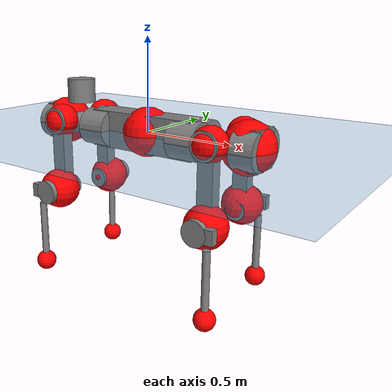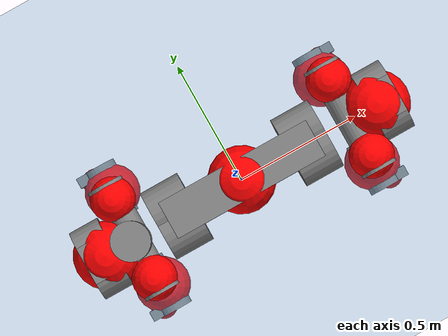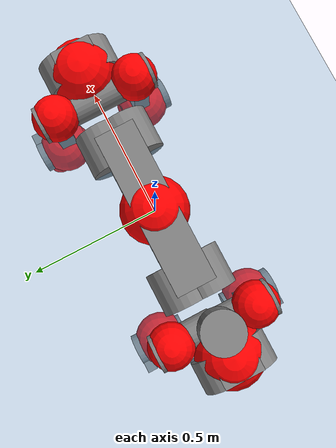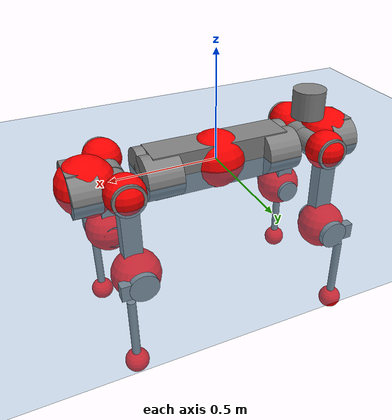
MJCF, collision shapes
<mujoco model="anymal_c">
  <compiler angle="radian" assetdir="assets" balanceinertia="true" inertiafromgeom="false"/>

  <option timestep="0.005" density="1.2" viscosity="2e-05"/>

  <size nkey="1"/>

  <visual>
    <quality shadowsize="8192"/>
    <map shadowclip="0.5"/>
  </visual>

  <default>
    <default class="/">
      <material specular="0" shininess="0.25"/>
      <geom contype="0" conaffinity="0" group="1" solref="-1000 -80"/>
      <site size="0.01 0.005 0.005" group="5"/>
      <general forcelimited="true" forcerange="-80 80" biastype="affine" gainprm="80" biasprm="0 -80 -2"/>
      <default class="anymal_c">
        <joint armature="0.01" damping="0.01" frictionloss="0.1"/>
        <default class="visual">
          <geom type="mesh" group="2"/>
          <default class="visual_zflip"/>
        </default>
        <default class="collision">
          <geom type="cylinder" group="3"/>
          <default class="foot">
            <geom size="0.03 0 0" type="sphere" condim="6" priority="1" friction="0.8 0.02 0.01" solimp="0.015 1 0.03"/>
          </default>
        </default>
      </default>
      <default class="reward_collision_sphere">
        <geom group="5" rgba="1 0 0 1"/>
      </default>
    </default>
  </default>

  <asset>
    <texture type="skybox" colorspace="auto" name="//unnamed_texture_0" builtin="gradient" rgb1="0.95 0.95 0.95" rgb2="0.95 0.95 0.95" width="100" height="600"/>
    <texture type="2d" colorspace="auto" name="texplane" builtin="checker" rgb1="0.345 0.575 0.748" rgb2="0.345 0.575 0.748" markrgb="1 1 1" width="512" height="512"/>
    <texture type="2d" colorspace="linear" name="base" file="base.png"/>
    <texture type="2d" colorspace="linear" name="top_shell" file="top_shell.png"/>
    <texture type="2d" colorspace="linear" name="bottom_shell" file="bottom_shell.png"/>
    <texture type="2d" colorspace="linear" name="remote" file="remote.png"/>
    <texture type="2d" colorspace="linear" name="hatch" file="hatch.png"/>
    <texture type="2d" colorspace="linear" name="handle" file="handle.png"/>
    <texture type="2d" colorspace="linear" name="face" file="face.png"/>
    <texture type="2d" colorspace="linear" name="battery" file="battery.png"/>
    <texture type="2d" colorspace="linear" name="lidar_cage" file="lidar_cage.png"/>
    <texture type="2d" colorspace="linear" name="depth_camera" file="depth_camera.png"/>
    <texture type="2d" colorspace="linear" name="wide_angle_camera" file="wide_angle_camera.png"/>
    <texture type="2d" colorspace="linear" name="lidar" file="lidar.png"/>
    <texture type="2d" colorspace="linear" name="drive" file="drive.png"/>
    <texture type="2d" colorspace="linear" name="hip_l" file="hip_l.png"/>
    <texture type="2d" colorspace="linear" name="shank_l" file="shank_l.png"/>
    <texture type="2d" colorspace="linear" name="foot" file="foot.png"/>
    <texture type="2d" colorspace="linear" name="thigh" file="thigh.png"/>
    <texture type="2d" colorspace="linear" name="shank_r" file="shank_r.png"/>
    <texture type="2d" colorspace="linear" name="hip_r" file="hip_r.png"/>
    <material name="MatPlane" class="/" texture="texplane" texuniform="true" texrepeat="2 2" specular="0.9" shininess="0.5"/>
    <material name="black_plastic" class="/" rgba="0.007 0.007 0.007 1"/>
    <material name="green" class="/" rgba="0.052 0.178 0.033 1"/>
    <material name="red" class="/" rgba="0.178 0.006 0.005 1"/>
    <material name="yellow" class="/" rgba="0.178 0.119 0.006 1"/>
    <material name="lwl" class="/" rgba="0.8 0.8 0.8 1"/>
    <material name="base" class="/" texture="base"/>
    <material name="top_shell" class="/" texture="top_shell"/>
    <material name="bottom_shell" class="/" texture="bottom_shell"/>
    <material name="hip_l" class="/" texture="hip_l"/>
    <material name="thigh" class="/" texture="thigh"/>
    <material name="shank_l" class="/" texture="shank_l"/>
    <material name="foot" class="/" texture="foot"/>
    <material name="hip_r" class="/" texture="hip_r"/>
    <material name="shank" class="/" texture="shank_r"/>
    <material name="hatch" class="/" texture="hatch"/>
    <material name="remote" class="/" texture="remote"/>
    <material name="handle" class="/" texture="handle"/>
    <material name="face" class="/" texture="face"/>
    <material name="depth_camera" class="/" texture="depth_camera"/>
    <material name="wide_angle_camera" class="/" texture="wide_angle_camera"/>
    <material name="battery" class="/" texture="battery"/>
    <material name="lidar_cage" class="/" texture="lidar_cage"/>
    <material name="lidar" class="/" texture="lidar"/>
    <material name="drive" class="/" texture="drive"/>
    <mesh name="base_0" class="/" file="base_0.obj"/>
    <mesh name="base_1" class="/" file="base_1.obj"/>
    <mesh name="base_2" class="/" file="base_2.obj"/>
    <mesh name="base_3" class="/" file="base_3.obj"/>
    <mesh name="base_4" class="/" file="base_4.obj"/>
    <mesh name="base_5" class="/" file="base_5.obj"/>
    <mesh name="top_shell" class="/" file="top_shell.obj"/>
    <mesh name="bottom_shell" class="/" file="bottom_shell.obj"/>
    <mesh name="remote" class="/" file="remote.obj"/>
    <mesh name="handle" class="/" file="handle.obj"/>
    <mesh name="face" class="/" file="face.obj"/>
    <mesh name="wide_angle_camera" class="/" file="wide_angle_camera.obj"/>
    <mesh name="depth_camera" class="/" file="depth_camera.obj"/>
    <mesh name="battery" class="/" file="battery.obj"/>
    <mesh name="lidar_cage" class="/" file="lidar_cage.obj"/>
    <mesh name="lidar" class="/" file="lidar.obj"/>
    <mesh name="drive" class="/" file="drive.obj"/>
    <mesh name="hip_l" class="/" file="hip_l.obj"/>
    <mesh name="thigh" class="/" file="thigh.obj"/>
    <mesh name="shank_l" class="/" file="shank_l.obj"/>
    <mesh name="foot" class="/" file="foot.obj"/>
    <mesh name="hip_r" class="/" file="hip_r.obj"/>
    <mesh name="hatch" class="/" file="hatch.obj"/>
    <mesh name="shank_r" class="/" file="shank_r.obj"/>
  </asset>

  <worldbody>
    <geom name="floor" class="/" size="100 100 0.125" type="plane" group="0" material="MatPlane"/>
    <light name="toplight_shadow" class="/" pos="0 0 5" dir="0.0990148 0.0990148 -0.990148" type="directional" ambient="0.04 0.04 0.04" diffuse="0.55 0.55 0.55" specular="0.12 0.12 0.12"/>
    <light name="toplight_fill" class="/" pos="0 0 5" dir="0.0990148 0.0990148 -0.990148" type="directional" castshadow="false" ambient="0.04 0.04 0.04" diffuse="0.3 0.3 0.3" specular="0.08 0.08 0.08"/>
    <body name="trunk" childclass="anymal_c" pos="0.0020245 0.000337348 0.00436886" quat="1 -0.000952455 -0.000110281 0.000153204">
      <inertial pos="0.00870035 0.0070111 0.0669773" quat="0.501475 0.501034 0.499328 0.498156" mass="26.2343" diaginertia="2.23357 0.0626178 0.910679"/>
      <joint name="//unnamed_joint_0" type="free" armature="0" damping="0" frictionloss="0"/>
      <geom name="//unnamed_geom_1" class="visual" material="green" mesh="base_0"/>
      <geom name="//unnamed_geom_2" class="visual" material="yellow" mesh="base_1"/>
      <geom name="//unnamed_geom_3" class="visual" material="red" mesh="base_2"/>
      <geom name="//unnamed_geom_4" class="visual" material="black_plastic" mesh="base_3"/>
      <geom name="//unnamed_geom_5" class="visual" material="lwl" mesh="base_4"/>
      <geom name="//unnamed_geom_6" class="visual" material="base" mesh="base_5"/>
      <geom name="trunk_1" class="collision" size="0.322263 0.0777876 0.100013" type="box"/>
      <geom name="trunk_2" class="collision" size="0.100013 0.0805657" pos="0.286746 0.0451359 0" quat="0.707107 0 0.707107 0"/>
      <geom name="trunk_3" class="collision" size="0.100013 0.0805657" pos="-0.286746 0.0451359 0" quat="0.707107 0 0.707107 0"/>
      <geom name="trunk_4" class="collision" size="0.100013 0.0805657" pos="0.286746 -0.0451359 0" quat="0.707107 0 0.707107 0"/>
      <geom name="trunk_5" class="collision" size="0.100013 0.0805657" pos="-0.286746 -0.0451359 0" quat="0.707107 0 0.707107 0"/>
      <geom name="//unnamed_geom_12" class="visual" material="top_shell" mesh="top_shell"/>
      <geom name="//unnamed_geom_13" class="visual" material="bottom_shell" mesh="bottom_shell"/>
      <geom name="//unnamed_geom_14" class="visual" material="remote" mesh="remote"/>
      <geom name="//unnamed_geom_15" class="visual" material="handle" mesh="handle"/>
      <geom name="//unnamed_geom_16" class="visual" pos="0.546465 0 0" quat="1 0 0 0" material="face" mesh="face"/>
      <geom name="trunk_6" class="collision" size="0.0611188 0.0777876 0.100013" pos="0.618976 0 0" type="box"/>
      <geom name="//unnamed_geom_18" class="collision" size="0.100013 0.0611188" pos="0.618976 0.0451359 0" quat="0.707107 0 0.707107 0"/>
      <geom name="//unnamed_geom_19" class="collision" size="0.100013 0.0611188" pos="0.618976 -0.0451359 0" quat="0.707107 0 0.707107 0"/>
      <geom name="//unnamed_geom_20" class="visual" pos="0.608628 0 -0.0404178" quat="0.965926 0 0.258819 0" material="depth_camera" mesh="depth_camera"/>
      <geom name="//unnamed_geom_21" class="visual" pos="0.676325 0 0.0205176" material="wide_angle_camera" mesh="wide_angle_camera"/>
      <geom name="//unnamed_geom_22" class="visual_zflip" pos="-0.546465 0 0" quat="0 0 0 1" material="face" mesh="face"/>
      <geom name="trunk_7" class="collision" size="0.0611188 0.0777876 0.100013" pos="-0.618976 0 0" quat="0 0 0 1" type="box"/>
      <geom name="//unnamed_geom_24" class="collision" size="0.100013 0.0611188" pos="-0.618976 -0.0451359 0" quat="0 -0.707107 0 0.707107"/>
      <geom name="//unnamed_geom_25" class="collision" size="0.100013 0.0611188" pos="-0.618976 0.0451359 0" quat="0 -0.707107 0 0.707107"/>
      <geom name="//unnamed_geom_26" class="visual" pos="-0.608628 0 -0.0404178" quat="0 -0.258819 0 0.965926" material="depth_camera" mesh="depth_camera"/>
      <geom name="//unnamed_geom_27" class="visual_zflip" pos="-0.676325 0 0.0205176" quat="0 0 0 1" material="wide_angle_camera" mesh="wide_angle_camera"/>
      <geom name="//unnamed_geom_28" class="visual" material="battery" mesh="battery"/>
      <geom name="//unnamed_geom_29" class="visual" pos="0 0.0404648 0.0394186" quat="0.683013 -0.183013 0.183013 0.683013" material="depth_camera" mesh="depth_camera"/>
      <geom name="//unnamed_geom_30" class="visual" pos="0 -0.0404648 0.0394186" quat="0.683013 0.183013 0.183013 -0.683013" material="depth_camera" mesh="depth_camera"/>
      <geom name="//unnamed_geom_31" class="visual" pos="-0.479887 0 0.100738" quat="1 0 0 0" material="lidar_cage" mesh="lidar_cage"/>
      <geom name="trunk_8" class="collision" size="0.0777876 0.0666751" pos="-0.479887 0 0.182973"/>
      <geom name="//unnamed_geom_33" class="visual" pos="-0.479887 -0.000264629 0.194897" quat="0.707107 0 0 -0.707107" material="lidar" mesh="lidar"/>
      <geom name="//unnamed_geom_34" class="visual" pos="0.39538 0.0673169 -1.25198e-08" quat="0.258819 0.965926 0 0" material="drive" mesh="drive"/>
      <geom name="//unnamed_geom_35" class="visual" pos="0.39538 -0.0673169 1.25198e-08" quat="0.258819 -0.965926 0 0" material="drive" mesh="drive"/>
      <geom name="//unnamed_geom_36" class="visual" pos="-0.39538 0.0673169 1.25198e-08" quat="0 0 0.965926 -0.258819" material="drive" mesh="drive"/>
      <geom name="//unnamed_geom_37" class="visual" pos="-0.39538 -0.0673169 -1.25198e-08" quat="0 0 -0.965926 -0.258819" material="drive" mesh="drive"/>
      <geom name="//unnamed_geom_38" class="visual" pos="0.152931 0 0.100052" quat="1 0 0 0" material="hatch" mesh="hatch"/>
      <geom name="//unnamed_geom_39" class="reward_collision_sphere" size="0.13335"/>
      <geom name="//unnamed_geom_40" class="reward_collision_sphere" size="0.13335" pos="0.593267 0 0"/>
      <geom name="//unnamed_geom_41" class="reward_collision_sphere" size="0.13335" pos="-0.593267 0 0"/>
      <site name="imu" pos="0.37337 -0.00344347 0.0287386" size="0.0111125"/>
      <camera name="track" pos="0 -1.2896 0" quat="0.707107 0.707107 0 0" mode="trackcom"/>
      <camera name="ego_camera" pos="0.593267 0 -0.0548233" quat="-0.5 -0.5 0.5 0.5"/>
      <body name="LF_HIP" pos="0.397518 0.0676943 -0.00137261" quat="0.258846 0.965918 0.000207054 0.00104831">
        <inertial pos="0.0675428 -0.00771901 -0.0136295" quat="-0.128632 0.719014 -0.141699 0.668128" mass="4.06907" diaginertia="0.0249862 0.000527084 0.0154898"/>
        <joint name="LF_HAA" pos="0 0 0" axis="0.999689 0.0176422 0.0176262" range="-0.761519 0.433593" armature="0.00655138" damping="0.0476436" frictionloss="0.103271"/>
        <geom name="//unnamed_geom_42" class="visual" pos="0 -0.000736486 0.000120967" quat="0.258819 -0.965926 0 0" material="hip_l" mesh="hip_l"/>
        <geom name="//unnamed_geom_43" class="visual" pos="0.0789705 -0.0870788 -0.0556432" quat="0.183013 -0.683013 0.683013 0.183013" material="drive" mesh="drive"/>
        <geom name="//unnamed_geom_44" class="collision" size="0.0555625 0.0777876" pos="0.0789705 -0.00771167 -0.00946387" quat="-0.353553 -0.612372 0.612372 -0.353553"/>
        <body name="LF_THIGH" pos="0.0801252 -0.0487097 -0.0569054" quat="0.183745 -0.682538 0.683008 0.184065">
          <inertial pos="0.0394565 -0.000310176 -0.344203" quat="0.993252 -0.00546288 -0.0813314 0.0824991" mass="4.13399" diaginertia="0.134972 0.00342091 0.0203543"/>
          <joint name="LF_HFE" pos="0 0 0" axis="0.998988 0.0443045 -0.00777247" stiffness="0.00205159" range="-3.15715 3.16875" armature="0.0118905" damping="0.00687176" frictionloss="0.149686"/>
          <geom name="//unnamed_geom_45" class="visual" pos="0.0134015 2.11175e-05 0" quat="0.707107 0 0 -0.707107" material="thigh" mesh="thigh"/>
          <geom name="//unnamed_geom_46" class="collision" size="0.0722313 0.04445" pos="0.0527349 0 0" quat="0.5 0.5 -0.5 -0.5"/>
          <geom name="//unnamed_geom_47" class="collision" size="0.0416719 0.0333375 0.157035" pos="0.0395512 0 -0.193682" quat="0.707107 0 0 -0.707107" type="box"/>
          <geom name="//unnamed_geom_48" class="visual" pos="0.132233 0 -0.390616" quat="1 0 0 0" material="drive" mesh="drive"/>
          <geom name="//unnamed_geom_49" class="collision" size="0.0555625 0.0777876" pos="0.0399467 0 -0.390616" quat="0.707107 0 0.707107 0"/>
          <geom name="//unnamed_geom_50" class="reward_collision_sphere" size="0.0889001" pos="0.0329593 0 0"/>
          <body name="LF_SHANK" pos="0.12627 0.00620963 -0.381592" quat="0.999996 -0.00214485 0.00189662 0.000517929">
            <inertial pos="0.00645914 -0.0392847 -0.111157" quat="0.992636 -0.117958 -0.000769066 -0.0275416" mass="0.814209" diaginertia="0.0417524 0.00103778 0.00551837"/>
            <joint name="LF_KFE" pos="0 0 0" axis="0.999997 -0.000849461 0.00222971" stiffness="0.00117729" range="-3.06129 3.12064" armature="0.0100196" damping="0.0372426" frictionloss="0.0911108"/>
            <geom name="//unnamed_geom_51" class="visual" pos="0.00436992 0.0233006 0" quat="0.707107 0 0 -0.707107" material="shank_l" mesh="shank_l"/>
            <geom name="LF_kfe_act" class="collision" size="0.0666751 0.022225" pos="0.0263674 0 0" quat="0.5 0.5 -0.5 -0.5"/>
            <geom name="//unnamed_geom_53" class="collision" size="0.0638958 0.0375047 0.0211138" pos="0.0263674 -0.0370753 0" quat="0.5 0.5 -0.5 -0.5" type="box"/>
            <geom name="//unnamed_geom_54" class="visual" pos="0.0172037 -0.0492012 -0.463216" quat="0.382683 0 0 -0.92388" material="foot" mesh="foot"/>
            <geom name="LF_calf" class="collision" size="0.0194469 0.156966" pos="0.0172048 -0.0567101 -0.231608" quat="0.707107 0 0 -0.707107"/>
            <geom name="LF_foot" class="foot" size="0.031157" pos="0.0172048 -0.0567101 -0.432378" quat="0.707107 0 0 -0.707107"/>
            <geom name="//unnamed_geom_57" class="reward_collision_sphere" size="0.111125" pos="-0.0659186 0 0"/>
            <geom name="//unnamed_geom_58" class="reward_collision_sphere" size="0.0555625" pos="0.0172048 -0.0567101 -0.432378"/>
            <site name="LF_foot" class="foot" pos="0.0172048 -0.0567101 -0.432378" quat="0.707107 0 0 -0.707107" size="0.0111125"/>
          </body>
        </body>
      </body>
      <body name="RF_HIP" pos="0.399283 -0.068023 0.00190727" quat="0.258615 -0.96598 0.000182862 -0.000768997">
        <inertial pos="0.0680527 0.00806473 -0.00939197" quat="0.137007 0.676116 0.132795 0.711661" mass="3.61727" diaginertia="0.0227296 0.000505498 0.0150983"/>
        <joint name="RF_HAA" pos="0 0 0" axis="0.999996 0.00214229 -0.0020386" range="-0.342863 0.749091" armature="0.0146975" damping="0.00813831" frictionloss="0.150381"/>
        <geom name="//unnamed_geom_59" class="visual" pos="0 0.00073648 0.000120967" quat="0.258819 0.965926 0 0" material="hip_r" mesh="hip_r"/>
        <geom name="//unnamed_geom_60" class="visual" pos="0.0789704 0.0870788 -0.0556432" quat="0.183013 0.683013 0.683013 -0.183013" material="drive" mesh="drive"/>
        <geom name="//unnamed_geom_61" class="collision" size="0.0555625 0.0777876" pos="0.0789705 0.00771167 -0.00946387" quat="-0.353553 0.612372 0.612372 0.353553"/>
        <body name="RF_THIGH" pos="0.0805533 0.0390742 -0.0556139" quat="0.182963 0.683185 0.682881 -0.182909">
          <inertial pos="0.0402608 0.00179132 -0.339034" quat="0.993393 -0.0145159 -0.0516315 0.101463" mass="4.94016" diaginertia="0.131634 0.003389 0.0210883"/>
          <joint name="RF_HFE" pos="0 0 0" axis="0.999669 0.0256206 0.00242236" stiffness="0.00731532" range="-3.31847 3.06092" armature="0.0111183" damping="0.0314365" frictionloss="0.055169"/>
          <geom name="//unnamed_geom_62" class="visual" pos="0.0134015 2.11175e-05 0" quat="0.707107 0 0 -0.707107" material="thigh" mesh="thigh"/>
          <geom name="//unnamed_geom_63" class="collision" size="0.0722313 0.04445" pos="0.0527349 0 0" quat="0.5 0.5 0.5 0.5"/>
          <geom name="//unnamed_geom_64" class="collision" size="0.0416719 0.0333375 0.157035" pos="0.0395512 0 -0.193682" quat="0.707107 0 0 0.707107" type="box"/>
          <geom name="//unnamed_geom_65" class="visual" pos="0.132233 0 -0.390616" quat="1 0 0 0" material="drive" mesh="drive"/>
          <geom name="//unnamed_geom_66" class="collision" size="0.0555625 0.0777876" pos="0.0399467 0 -0.390616" quat="0.707107 0 0.707107 0"/>
          <geom name="//unnamed_geom_67" class="reward_collision_sphere" size="0.0889001" pos="0.0329593 0 0"/>
          <body name="RF_SHANK" pos="0.125446 0.00787449 -0.39139" quat="0.999999 4.56355e-05 0.000537387 0.000932336">
            <inertial pos="0.0068075 0.03758 -0.118287" quat="0.991778 0.126702 0.00531951 0.017172" mass="0.796159" diaginertia="0.0452347 0.00111124 0.00558669"/>
            <joint name="RF_KFE" pos="0 0 0" axis="0.999985 0.00208473 -0.00503269" stiffness="0.00313349" range="-3.07629 3.06588" armature="0.0111712" damping="0.0179461" frictionloss="0.158123"/>
            <geom name="//unnamed_geom_68" class="visual" pos="0.0043699 -0.0233006 0" quat="0.707107 0 0 0.707107" material="shank" mesh="shank_r"/>
            <geom name="RF_kfe_act" class="collision" size="0.0666751 0.022225" pos="0.0263674 0 0" quat="0.5 0.5 0.5 0.5"/>
            <geom name="//unnamed_geom_70" class="collision" size="0.0638958 0.0375047 0.0211138" pos="0.0263674 0.0370753 0" quat="0.5 0.5 0.5 0.5" type="box"/>
            <geom name="//unnamed_geom_71" class="visual" pos="0.0172058 0.0492012 -0.463216" quat="0.382683 0 0 0.92388" material="foot" mesh="foot"/>
            <geom name="RF_calf" class="collision" size="0.0194469 0.156966" pos="0.0172048 0.0567101 -0.231608" quat="0.707107 0 0 0.707107"/>
            <geom name="RF_foot" class="foot" size="0.0457502" pos="0.0172048 0.0567101 -0.432378" quat="0.707107 0 0 0.707107"/>
            <geom name="//unnamed_geom_74" class="reward_collision_sphere" size="0.111125" pos="-0.0659186 0 0"/>
            <geom name="//unnamed_geom_75" class="reward_collision_sphere" size="0.0555625" pos="0.0172048 0.0567101 -0.432378"/>
            <site name="RF_foot" class="foot" pos="0.0172048 0.0567101 -0.432378" quat="0.707107 0 0 0.707107" size="0.0111125"/>
          </body>
        </body>
      </body>
      <body name="LH_HIP" pos="-0.386544 0.0659408 0.000562787" quat="-4.90146e-05 -0.000145889 0.965979 -0.258622">
        <inertial pos="0.0732044 0.00241142 -0.00932235" quat="0.138465 0.684146 0.141382 0.701985" mass="3.86182" diaginertia="0.0253389 0.000528792 0.0186818"/>
        <joint name="LH_HAA" pos="0 0 0" axis="0.999998 0.00161078 0.00129313" range="-0.506659 0.921732" armature="0.0154761" damping="0.019598" frictionloss="0.100693"/>
        <geom name="//unnamed_geom_76" class="visual" pos="0 0.00073648 0.000120967" quat="-0.258819 -0.965926 0 0" material="hip_r" mesh="hip_r"/>
        <geom name="//unnamed_geom_77" class="visual" pos="0.0789704 0.0870788 -0.0556432" quat="0.183013 0.683013 0.683013 -0.183013" material="drive" mesh="drive"/>
        <geom name="//unnamed_geom_78" class="collision" size="0.0555625 0.0777876" pos="0.0789705 0.00771167 -0.00946387" quat="-0.353553 0.612372 0.612372 0.353553"/>
        <body name="LH_THIGH" pos="0.0826076 0.0566472 -0.0584225" quat="0.183005 0.683019 0.683019 -0.182972">
          <inertial pos="0.0404709 -0.00585566 -0.338229" quat="0.991495 -0.00441333 -0.0878834 0.0958842" mass="4.24682" diaginertia="0.121614 0.00347383 0.0202877"/>
          <joint name="LH_HFE" pos="0 0 0" axis="0.999539 0.0032356 0.0301729" range="-3.13542 3.09778" armature="0.0123352" damping="0.015655" frictionloss="0.108418"/>
          <geom name="//unnamed_geom_79" class="visual" pos="0.0134015 2.11175e-05 0" quat="0.707107 0 0 -0.707107" material="thigh" mesh="thigh"/>
          <geom name="//unnamed_geom_80" class="collision" size="0.0722313 0.04445" pos="0.0527349 0 0" quat="0.5 0.5 -0.5 -0.5"/>
          <geom name="//unnamed_geom_81" class="collision" size="0.0416719 0.0333375 0.157035" pos="0.0395512 0 -0.193682" quat="0.707107 0 0 -0.707107" type="box"/>
          <geom name="//unnamed_geom_82" class="visual" pos="0.132233 0 -0.390616" quat="1 0 0 0" material="drive" mesh="drive"/>
          <geom name="//unnamed_geom_83" class="collision" size="0.0555625 0.0777876" pos="0.0399467 0 -0.390616" quat="0.707107 0 0.707107 0"/>
          <geom name="//unnamed_geom_84" class="reward_collision_sphere" size="0.0889001" pos="0.0329593 0 0"/>
          <body name="LH_SHANK" pos="0.136248 0.00110241 -0.389957" quat="1 -0.000388941 -0.000197033 0.000233366">
            <inertial pos="0.00736981 0.0400124 -0.111284" quat="0.993482 0.101635 -0.0480911 0.0187333" mass="0.81527" diaginertia="0.0417746 0.00106086 0.00607307"/>
            <joint name="LH_KFE" pos="0 0 0" axis="0.999674 -0.00612047 -0.0247934" stiffness="0.00572151" range="-3.1691 3.13398" armature="0.0137999" damping="0.00196997" frictionloss="0.0896048"/>
            <geom name="//unnamed_geom_85" class="visual" pos="0.0043699 -0.0233006 0" quat="-0.707107 0 0 -0.707107" material="shank" mesh="shank_r"/>
            <geom name="LH_kfe_act" class="collision" size="0.0666751 0.022225" pos="0.0263674 0 0" quat="0.5 0.5 -0.5 -0.5"/>
            <geom name="//unnamed_geom_87" class="collision" size="0.0638958 0.0375047 0.0211138" pos="0.0263674 0.0370753 0" quat="0.5 0.5 -0.5 -0.5" type="box"/>
            <geom name="//unnamed_geom_88" class="visual" pos="0.0172058 0.0492012 -0.463216" quat="-0.382683 0 0 -0.92388" material="foot" mesh="foot"/>
            <geom name="LH_calf" class="collision" size="0.0194469 0.156966" pos="0.0172048 0.0567101 -0.231608" quat="0.707107 0 0 -0.707107"/>
            <geom name="LH_foot" class="foot" size="0.0184483" pos="0.0172048 0.0567101 -0.432378" quat="0.707107 0 0 -0.707107"/>
            <geom name="//unnamed_geom_91" class="reward_collision_sphere" size="0.111125" pos="-0.0659186 0 0"/>
            <geom name="//unnamed_geom_92" class="reward_collision_sphere" size="0.0555625" pos="0.0172048 0.0567101 -0.432378"/>
            <site name="LH_foot" class="foot" pos="0.0172048 0.0567101 -0.432378" quat="0.707107 0 0 -0.707107" size="0.0111125"/>
          </body>
        </body>
      </body>
      <body name="RH_HIP" pos="-0.394309 -0.0594454 0.00150327" quat="-0.00235152 0.000843489 -0.965727 -0.259547">
        <inertial pos="0.0823957 -0.0112554 -0.0179751" quat="-0.129297 0.708958 -0.136634 0.6797" mass="3.89632" diaginertia="0.024142 0.000566467 0.0180818"/>
        <joint name="RH_HAA" pos="0 0 0" axis="0.999994 -0.00324373 -0.000754569" stiffness="0.0082298" range="-0.595676 0.314086" armature="0.0114728" damping="0.0282733" frictionloss="0.112414"/>
        <geom name="//unnamed_geom_93" class="visual" pos="0 -0.000736486 0.000120967" quat="-0.258819 0.965926 0 0" material="hip_l" mesh="hip_l"/>
        <geom name="//unnamed_geom_94" class="visual" pos="0.0789705 -0.0870788 -0.0556432" quat="-0.183013 0.683013 -0.683013 -0.183013" material="drive" mesh="drive"/>
        <geom name="//unnamed_geom_95" class="collision" size="0.0555625 0.0777876" pos="0.0789705 -0.00771167 -0.00946387" quat="0.353553 0.612372 -0.612372 0.353553"/>
        <body name="RH_THIGH" pos="0.0814527 -0.0446303 -0.065019" quat="-0.18277 0.682882 -0.683195 -0.183063">
          <inertial pos="0.0360872 -0.00109724 -0.335357" quat="0.993217 -0.00296761 -0.0801423 0.0841867" mass="5.22996" diaginertia="0.145886 0.0038175 0.0229646"/>
          <joint name="RH_HFE" pos="0 0 0" axis="0.999582 0.0288836 -0.00152797" stiffness="0.00452956" range="-3.103 3.16007" armature="0.0116857" damping="0.00558659" frictionloss="0.113451"/>
          <geom name="//unnamed_geom_96" class="visual" pos="0.0134015 2.11175e-05 0" quat="0.707107 0 0 -0.707107" material="thigh" mesh="thigh"/>
          <geom name="//unnamed_geom_97" class="collision" size="0.0722313 0.04445" pos="0.0527349 0 0" quat="0.5 0.5 0.5 0.5"/>
          <geom name="//unnamed_geom_98" class="collision" size="0.0416719 0.0333375 0.157035" pos="0.0395512 0 -0.193682" quat="0.707107 0 0 0.707107" type="box"/>
          <geom name="//unnamed_geom_99" class="visual" pos="0.132233 0 -0.390616" quat="1 0 0 0" material="drive" mesh="drive"/>
          <geom name="//unnamed_geom_100" class="collision" size="0.0555625 0.0777876" pos="0.0399467 0 -0.390616" quat="0.707107 0 0.707107 0"/>
          <geom name="//unnamed_geom_101" class="reward_collision_sphere" size="0.0889001" pos="0.0329593 0 0"/>
          <body name="RH_SHANK" pos="0.139433 -0.00115352 -0.38925" quat="0.999999 -0.000936393 0.000135217 0.000609598">
            <inertial pos="0.00822236 -0.0396573 -0.108538" quat="0.989924 -0.131566 0.00234999 -0.0522916" mass="0.847633" diaginertia="0.0429682 0.000975999 0.00568029"/>
            <joint name="RH_KFE" pos="0 0 0" axis="0.999449 -0.0327843 -0.00517491" range="-3.15169 3.13984" armature="0.0158568" damping="0.0102284" frictionloss="0.109822"/>
            <geom name="//unnamed_geom_102" class="visual" pos="0.00436992 0.0233006 0" quat="0.707107 0 0 -0.707107" material="shank_l" mesh="shank_l"/>
            <geom name="RH_kfe_act" class="collision" size="0.0666751 0.022225" pos="0.0263674 0 0" quat="0.5 0.5 0.5 0.5"/>
            <geom name="//unnamed_geom_104" class="collision" size="0.0638958 0.0375047 0.0211138" pos="0.0263674 -0.0370753 0" quat="0.5 0.5 0.5 0.5" type="box"/>
            <geom name="//unnamed_geom_105" class="visual" pos="0.0172037 -0.0492012 -0.463216" quat="0.382683 0 0 -0.92388" material="foot" mesh="foot"/>
            <geom name="RH_calf" class="collision" size="0.0194469 0.156966" pos="0.0172048 -0.0567101 -0.231608" quat="0.707107 0 0 0.707107"/>
            <geom name="RH_foot" class="foot" size="0.0381068" pos="0.0172048 -0.0567101 -0.432378" quat="0.707107 0 0 0.707107"/>
            <geom name="//unnamed_geom_108" class="reward_collision_sphere" size="0.111125" pos="-0.0659186 0 0"/>
            <geom name="//unnamed_geom_109" class="reward_collision_sphere" size="0.0555625" pos="0.0172048 -0.0567101 -0.432378"/>
            <site name="RH_foot" class="foot" pos="0.0172048 -0.0567101 -0.432378" quat="0.707107 0 0 0.707107" size="0.0111125"/>
          </body>
        </body>
      </body>
    </body>
  </worldbody>

  <contact>
    <pair class="/" geom1="floor" geom2="LF_foot" name="//unnamed_contact_0"/>
    <pair class="/" geom1="floor" geom2="RF_foot" name="//unnamed_contact_1"/>
    <pair class="/" geom1="floor" geom2="LH_foot" name="//unnamed_contact_2"/>
    <pair class="/" geom1="floor" geom2="RH_foot" name="//unnamed_contact_3"/>
  </contact>

  <actuator>
    <general name="LF_HAA" class="/" joint="LF_HAA" forcerange="-84.3567 84.3567" gainprm="60.5033" biasprm="0 -60.5033 -2.29707"/>
    <general name="LF_HFE" class="/" joint="LF_HFE" forcerange="-98.5968 98.5968" gainprm="60.5033" biasprm="0 -60.5033 -2.29707"/>
    <general name="LF_KFE" class="/" joint="LF_KFE" forcerange="-90.1463 90.1463" gainprm="60.5033" biasprm="0 -60.5033 -2.29707"/>
    <general name="RF_HAA" class="/" joint="RF_HAA" forcerange="-100.495 100.495" gainprm="60.5033" biasprm="0 -60.5033 -2.29707"/>
    <general name="RF_HFE" class="/" joint="RF_HFE" forcerange="-83.8258 83.8258" gainprm="60.5033" biasprm="0 -60.5033 -2.29707"/>
    <general name="RF_KFE" class="/" joint="RF_KFE" forcerange="-111.461 111.461" gainprm="60.5033" biasprm="0 -60.5033 -2.29707"/>
    <general name="LH_HAA" class="/" joint="LH_HAA" forcerange="-90.0999 90.0999" gainprm="60.5033" biasprm="0 -60.5033 -2.29707"/>
    <general name="LH_HFE" class="/" joint="LH_HFE" forcerange="-112.229 112.229" gainprm="60.5033" biasprm="0 -60.5033 -2.29707"/>
    <general name="LH_KFE" class="/" joint="LH_KFE" forcerange="-89.5782 89.5782" gainprm="60.5033" biasprm="0 -60.5033 -2.29707"/>
    <general name="RH_HAA" class="/" joint="RH_HAA" forcerange="-89.6848 89.6848" gainprm="60.5033" biasprm="0 -60.5033 -2.29707"/>
    <general name="RH_HFE" class="/" joint="RH_HFE" forcerange="-116.814 116.814" gainprm="60.5033" biasprm="0 -60.5033 -2.29707"/>
    <general name="RH_KFE" class="/" joint="RH_KFE" forcerange="-68.541 68.541" gainprm="60.5033" biasprm="0 -60.5033 -2.29707"/>
  </actuator>

  <sensor>
    <gyro site="imu" name="imu_angular_velocity"/>
    <velocimeter site="imu" name="imu_linear_velocity"/>
    <framelinvel objtype="site" objname="LF_foot" name="LF_foot_global_linear_velocity"/>
    <framelinvel objtype="site" objname="RF_foot" name="RF_foot_global_linear_velocity"/>
    <framelinvel objtype="site" objname="LH_foot" name="LH_foot_global_linear_velocity"/>
    <framelinvel objtype="site" objname="RH_foot" name="RH_foot_global_linear_velocity"/>
  </sensor>

  <keyframe>
    <key name="home" qpos="0 0 0.55 1 0 0 0 0 0.4 -0.8 0 -0.4 0.8 0 -0.4 0.8 0 0.4 -0.8"/>
  </keyframe>
</mujoco>
